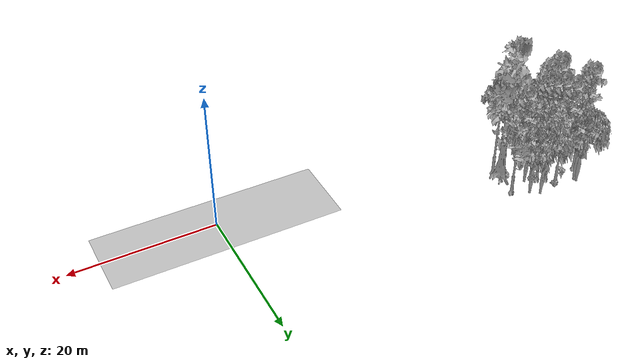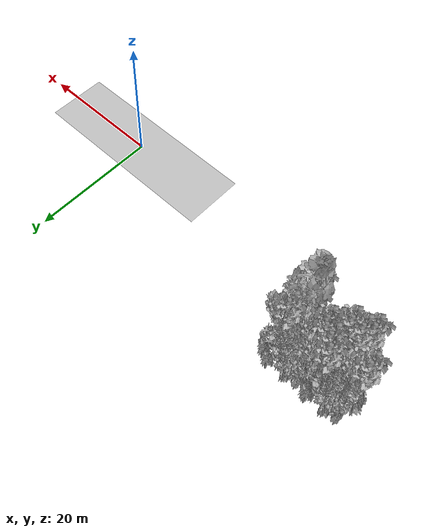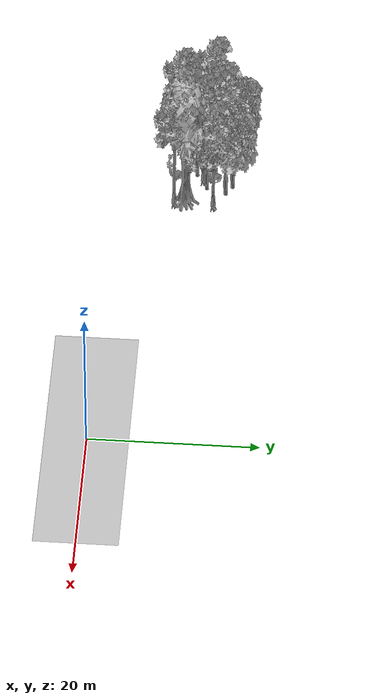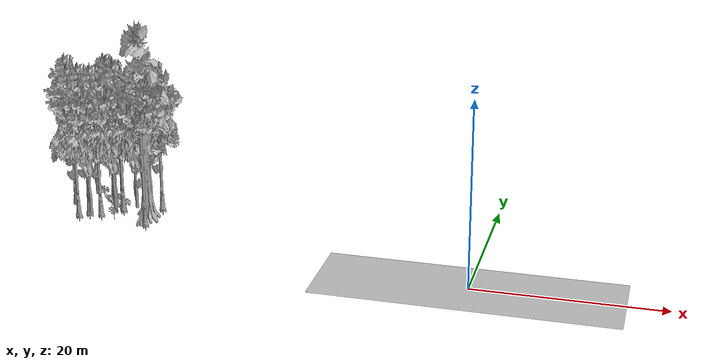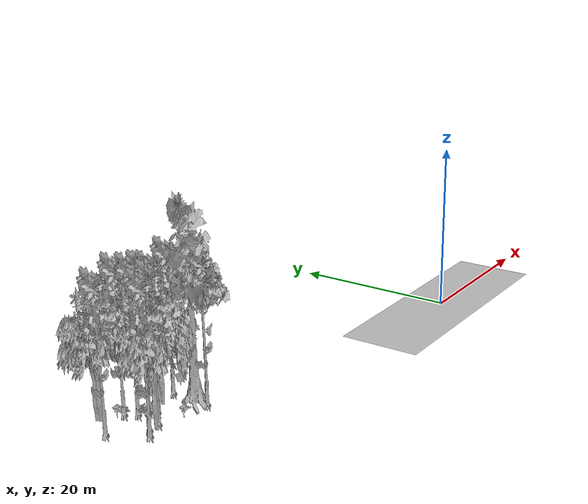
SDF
<sdf version="1.7">
 <world name="default">
  <model name="ground_plane">
   <static>1</static>
   <link name="link">
    <collision name="collision">
     <geometry><plane><normal>0 0 1</normal><size>100 100</size></plane></geometry>
     <surface><contact><ode><min_depth>0.01</min_depth><max_vel>0</max_vel></ode></contact></surface>
    </collision>
    <visual name="grass">
     <cast_shadows>0</cast_shadows>
     <geometry>
      <mesh>
       <scale>0.5814285714285714 0.18142857142857144 0.1</scale>
       <uri>file://grass_plane/meshes/grass_plane.dae</uri>
      </mesh>
     </geometry>
    </visual>
   </link>
  </model>
  <model name="Tree 21">
   <static>1</static>
   <pose>-39.96532088759932 13.575628985826079 0 1.57079 -0 0</pose>
   <link name="link">
    <collision name="collision">
     <geometry><mesh><scale>3.5 5 3.5</scale><uri>model://tree_2/meshes/tree_2.obj</uri></mesh></geometry>
    </collision>
    <visual name="visual">
     <geometry><mesh><scale>3.5 5 3.5</scale><uri>model://tree_2/meshes/tree_2.obj</uri></mesh></geometry>
    </visual>
   </link>
  </model>
  <model name="Tree 59">
   <static>1</static>
   <pose>-38.07434186668441 7.505772910804293 0 1.57079 -0 0</pose>
   <link name="link">
    <collision name="collision">
     <geometry><mesh><scale>3.5 5 3.5</scale><uri>model://tree_9/meshes/tree_9.obj</uri></mesh></geometry>
    </collision>
    <visual name="visual">
     <geometry><mesh><scale>3.5 5 3.5</scale><uri>model://tree_9/meshes/tree_9.obj</uri></mesh></geometry>
    </visual>
   </link>
  </model>
  <model name="Tree 101">
   <static>1</static>
   <pose>-44.41219498588233 13.246260540087679 0 1.57079 -0 0</pose>
   <link name="link">
    <collision name="collision">
     <geometry><mesh><scale>3.5 5 3.5</scale><uri>model://tree_9/meshes/tree_9.obj</uri></mesh></geometry>
    </collision>
    <visual name="visual">
     <geometry><mesh><scale>3.5 5 3.5</scale><uri>model://tree_9/meshes/tree_9.obj</uri></mesh></geometry>
    </visual>
   </link>
  </model>
  <model name="Tree 115">
   <static>1</static>
   <pose>-40.7380034090578 11.265494934808192 0 1.57079 -0 0</pose>
   <link name="link">
    <collision name="collision">
     <geometry><mesh><scale>3.5 5 3.5</scale><uri>model://tree_2/meshes/tree_2.obj</uri></mesh></geometry>
    </collision>
    <visual name="visual">
     <geometry><mesh><scale>3.5 5 3.5</scale><uri>model://tree_2/meshes/tree_2.obj</uri></mesh></geometry>
    </visual>
   </link>
  </model>
  <model name="Tree 132">
   <static>1</static>
   <pose>-42.55723812222895 11.542559915426125 0 1.57079 -0 0</pose>
   <link name="link">
    <collision name="collision">
     <geometry><mesh><scale>3.5 5 3.5</scale><uri>model://tree_9/meshes/tree_9.obj</uri></mesh></geometry>
    </collision>
    <visual name="visual">
     <geometry><mesh><scale>3.5 5 3.5</scale><uri>model://tree_9/meshes/tree_9.obj</uri></mesh></geometry>
    </visual>
   </link>
  </model>
  <model name="Tree 146">
   <static>1</static>
   <pose>-47.083783476124026 14.467379382376329 0 1.57079 -0 0</pose>
   <link name="link">
    <collision name="collision">
     <geometry><mesh><scale>3.5 5 3.5</scale><uri>model://tree_2/meshes/tree_2.obj</uri></mesh></geometry>
    </collision>
    <visual name="visual">
     <geometry><mesh><scale>3.5 5 3.5</scale><uri>model://tree_2/meshes/tree_2.obj</uri></mesh></geometry>
    </visual>
   </link>
  </model>
  <model name="Tree 203">
   <static>1</static>
   <pose>-41.161188463359856 14.348085861146181 0 1.57079 -0 0</pose>
   <link name="link">
    <collision name="collision">
     <geometry><mesh><scale>3.5 5 3.5</scale><uri>model://tree_2/meshes/tree_2.obj</uri></mesh></geometry>
    </collision>
    <visual name="visual">
     <geometry><mesh><scale>3.5 5 3.5</scale><uri>model://tree_2/meshes/tree_2.obj</uri></mesh></geometry>
    </visual>
   </link>
  </model>
  <model name="Tree 209">
   <static>1</static>
   <pose>-46.41714865697007 8.03431553225727 0 1.57079 -0 0</pose>
   <link name="link">
    <collision name="collision">
     <geometry><mesh><scale>3.5 5 3.5</scale><uri>model://tree_9/meshes/tree_9.obj</uri></mesh></geometry>
    </collision>
    <visual name="visual">
     <geometry><mesh><scale>3.5 5 3.5</scale><uri>model://tree_9/meshes/tree_9.obj</uri></mesh></geometry>
    </visual>
   </link>
  </model>
  <model name="Tree 229">
   <static>1</static>
   <pose>-46.95183789336444 14.087877209702302 0 1.57079 -0 0</pose>
   <link name="link">
    <collision name="collision">
     <geometry><mesh><scale>3.5 5 3.5</scale><uri>model://tree_2/meshes/tree_2.obj</uri></mesh></geometry>
    </collision>
    <visual name="visual">
     <geometry><mesh><scale>3.5 5 3.5</scale><uri>model://tree_2/meshes/tree_2.obj</uri></mesh></geometry>
    </visual>
   </link>
  </model>
  <model name="Tree 267">
   <static>1</static>
   <pose>-44.087963667404466 8.943158831469606 0 1.57079 -0 0</pose>
   <link name="link">
    <collision name="collision">
     <geometry><mesh><scale>3.5 5 3.5</scale><uri>model://tree_9/meshes/tree_9.obj</uri></mesh></geometry>
    </collision>
    <visual name="visual">
     <geometry><mesh><scale>3.5 5 3.5</scale><uri>model://tree_9/meshes/tree_9.obj</uri></mesh></geometry>
    </visual>
   </link>
  </model>
  <model name="Tree 269">
   <static>1</static>
   <pose>-48.5849168203445 11.87090225824327 0 1.57079 -0 0</pose>
   <link name="link">
    <collision name="collision">
     <geometry><mesh><scale>3.5 5 3.5</scale><uri>model://tree_9/meshes/tree_9.obj</uri></mesh></geometry>
    </collision>
    <visual name="visual">
     <geometry><mesh><scale>3.5 5 3.5</scale><uri>model://tree_9/meshes/tree_9.obj</uri></mesh></geometry>
    </visual>
   </link>
  </model>
  <model name="Tree 280">
   <static>1</static>
   <pose>-42.12170819230485 10.766652975258587 0 1.57079 -0 0</pose>
   <link name="link">
    <collision name="collision">
     <geometry><mesh><scale>3.5 5 3.5</scale><uri>model://tree_9/meshes/tree_9.obj</uri></mesh></geometry>
    </collision>
    <visual name="visual">
     <geometry><mesh><scale>3.5 5 3.5</scale><uri>model://tree_9/meshes/tree_9.obj</uri></mesh></geometry>
    </visual>
   </link>
  </model>
  <model name="Tree 388">
   <static>1</static>
   <pose>-38.368141483563775 8.878003902834692 0 1.57079 -0 0</pose>
   <link name="link">
    <collision name="collision">
     <geometry><mesh><scale>3.5 5 3.5</scale><uri>model://tree_4/meshes/tree_4.obj</uri></mesh></geometry>
    </collision>
    <visual name="visual">
     <geometry><mesh><scale>3.5 5 3.5</scale><uri>model://tree_4/meshes/tree_4.obj</uri></mesh></geometry>
    </visual>
   </link>
  </model>
  <model name="Tree 396">
   <static>1</static>
   <pose>-45.12913448493216 8.376635113041054 0 1.57079 -0 0</pose>
   <link name="link">
    <collision name="collision">
     <geometry><mesh><scale>3.5 5 3.5</scale><uri>model://tree_2/meshes/tree_2.obj</uri></mesh></geometry>
    </collision>
    <visual name="visual">
     <geometry><mesh><scale>3.5 5 3.5</scale><uri>model://tree_2/meshes/tree_2.obj</uri></mesh></geometry>
    </visual>
   </link>
  </model>
  <model name="Tree 412">
   <static>1</static>
   <pose>-43.60759300600869 12.079289218955164 0 1.57079 -0 0</pose>
   <link name="link">
    <collision name="collision">
     <geometry><mesh><scale>3.5 5 3.5</scale><uri>model://tree_9/meshes/tree_9.obj</uri></mesh></geometry>
    </collision>
    <visual name="visual">
     <geometry><mesh><scale>3.5 5 3.5</scale><uri>model://tree_9/meshes/tree_9.obj</uri></mesh></geometry>
    </visual>
   </link>
  </model>
  <model name="Tree 416">
   <static>1</static>
   <pose>-42.852202410362416 9.985889029811673 0 1.57079 -0 0</pose>
   <link name="link">
    <collision name="collision">
     <geometry><mesh><scale>3.5 5 3.5</scale><uri>model://tree_2/meshes/tree_2.obj</uri></mesh></geometry>
    </collision>
    <visual name="visual">
     <geometry><mesh><scale>3.5 5 3.5</scale><uri>model://tree_2/meshes/tree_2.obj</uri></mesh></geometry>
    </visual>
   </link>
  </model>
  <model name="Tree 431">
   <static>1</static>
   <pose>-37.90189069936774 12.20643027606468 0 1.57079 -0 0</pose>
   <link name="link">
    <collision name="collision">
     <geometry><mesh><scale>3.5 5 3.5</scale><uri>model://tree_9/meshes/tree_9.obj</uri></mesh></geometry>
    </collision>
    <visual name="visual">
     <geometry><mesh><scale>3.5 5 3.5</scale><uri>model://tree_9/meshes/tree_9.obj</uri></mesh></geometry>
    </visual>
   </link>
  </model>
  <model name="Tree 441">
   <static>1</static>
   <pose>-45.50924434581741 8.88862217288018 0 1.57079 -0 0</pose>
   <link name="link">
    <collision name="collision">
     <geometry><mesh><scale>3.5 5 3.5</scale><uri>model://tree_9/meshes/tree_9.obj</uri></mesh></geometry>
    </collision>
    <visual name="visual">
     <geometry><mesh><scale>3.5 5 3.5</scale><uri>model://tree_9/meshes/tree_9.obj</uri></mesh></geometry>
    </visual>
   </link>
  </model>
  <model name="Bush 9">
   <static>1</static>
   <pose>-41.79602547612306 7.508158473589486 0 1.57079 -0 0</pose>
   <link name="link">
    <collision name="collision">
     <geometry><mesh><scale>2 2 2</scale><uri>model://bush_5/meshes/bush_5.obj</uri></mesh></geometry>
     <surface><contact><collide_without_contact>false</collide_without_contact></contact></surface>
    </collision>
    <visual name="visual">
     <geometry><mesh><scale>2 2 2</scale><uri>model://bush_5/meshes/bush_5.obj</uri></mesh></geometry>
    </visual>
   </link>
  </model>
  <model name="Bush 66">
   <static>1</static>
   <pose>-42.05098070278909 11.320793609112613 0 1.57079 -0 0</pose>
   <link name="link">
    <collision name="collision">
     <geometry><mesh><scale>2 2 2</scale><uri>model://bush_3/meshes/bush_3.obj</uri></mesh></geometry>
     <surface><contact><collide_without_contact>false</collide_without_contact></contact></surface>
    </collision>
    <visual name="visual">
     <geometry><mesh><scale>2 2 2</scale><uri>model://bush_3/meshes/bush_3.obj</uri></mesh></geometry>
    </visual>
   </link>
  </model>
  <model name="Bush 137">
   <static>1</static>
   <pose>-43.99726572958483 13.599227258287772 0 1.57079 -0 0</pose>
   <link name="link">
    <collision name="collision">
     <geometry><mesh><scale>2 2 2</scale><uri>model://bush_2/meshes/bush_2.obj</uri></mesh></geometry>
     <surface><contact><collide_without_contact>false</collide_without_contact></contact></surface>
    </collision>
    <visual name="visual">
     <geometry><mesh><scale>2 2 2</scale><uri>model://bush_2/meshes/bush_2.obj</uri></mesh></geometry>
    </visual>
   </link>
  </model>
  <model name="Bush 267">
   <static>1</static>
   <pose>-45.4647638625257 13.144564238687348 0 1.57079 -0 0</pose>
   <link name="link">
    <collision name="collision">
     <geometry><mesh><scale>2 2 2</scale><uri>model://bush_5/meshes/bush_5.obj</uri></mesh></geometry>
     <surface><contact><collide_without_contact>false</collide_without_contact></contact></surface>
    </collision>
    <visual name="visual">
     <geometry><mesh><scale>2 2 2</scale><uri>model://bush_5/meshes/bush_5.obj</uri></mesh></geometry>
    </visual>
   </link>
  </model>
  <model name="Bush 279">
   <static>1</static>
   <pose>-43.689072063513564 11.064880066810897 0 1.57079 -0 0</pose>
   <link name="link">
    <collision name="collision">
     <geometry><mesh><scale>2 2 2</scale><uri>model://bush_0/meshes/bush_0.obj</uri></mesh></geometry>
     <surface><contact><collide_without_contact>false</collide_without_contact></contact></surface>
    </collision>
    <visual name="visual">
     <geometry><mesh><scale>2 2 2</scale><uri>model://bush_0/meshes/bush_0.obj</uri></mesh></geometry>
    </visual>
   </link>
  </model>
 </world>
</sdf>
